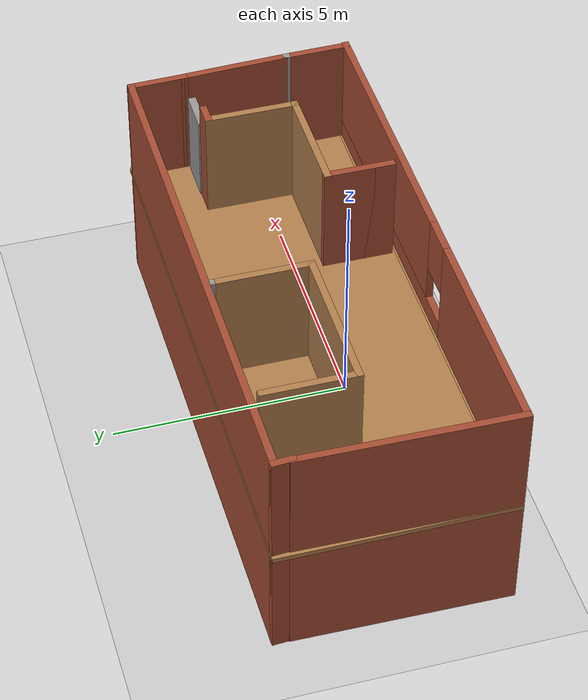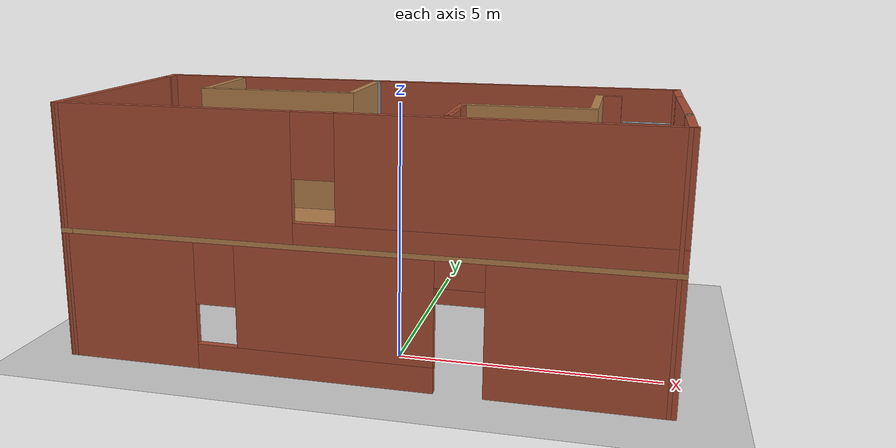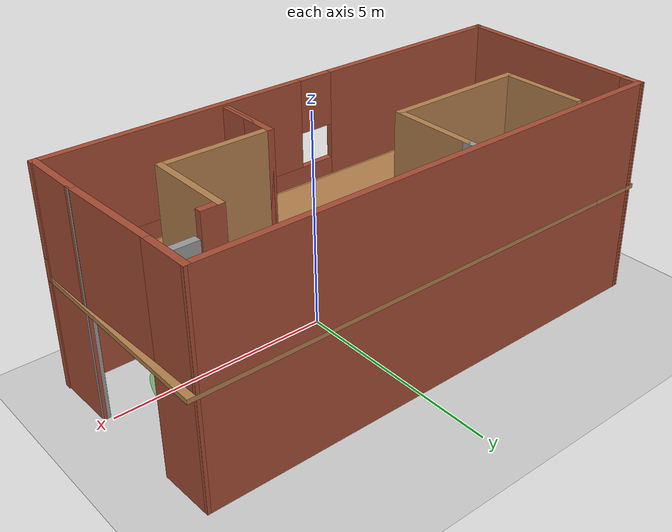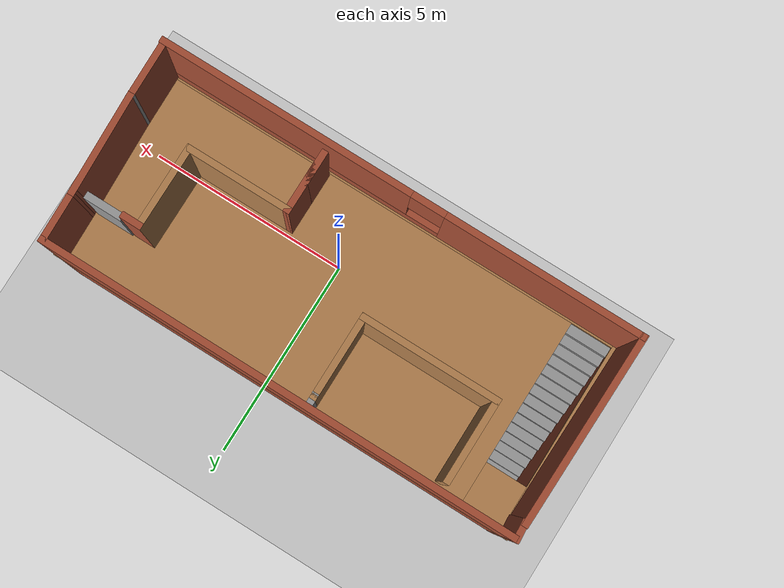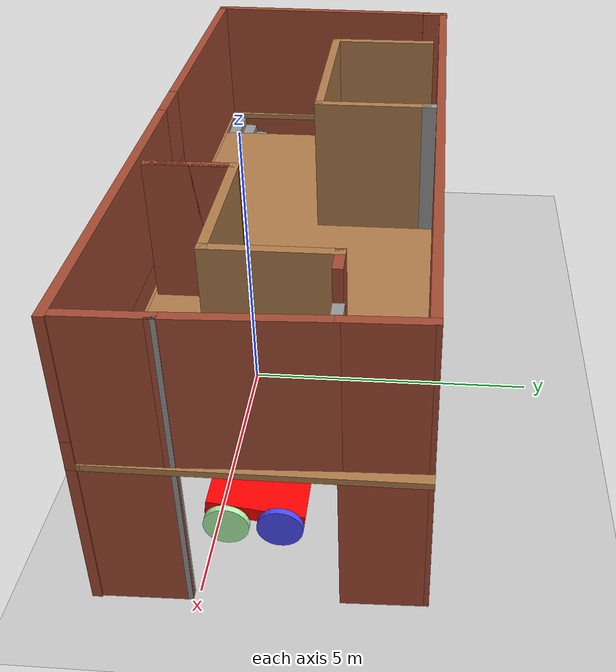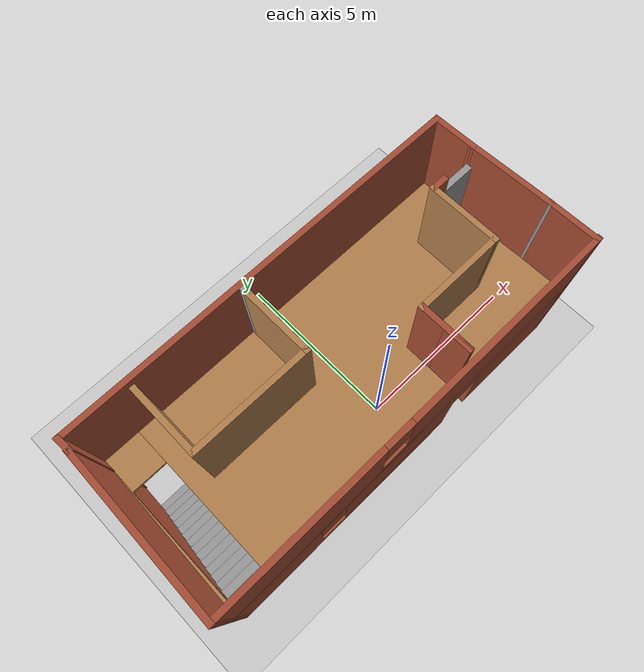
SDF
<sdf version="1.6">
 <world name="default">
  <model name="ground_plane">
   <static>1</static>
   <link name="link">
    <collision name="collision">
     <geometry><plane><normal>0 0 1</normal><size>100 100</size></plane></geometry>
     <surface><friction><ode><mu>100</mu><mu2>50</mu2></ode></friction></surface>
    </collision>
    <visual name="visual">
     <cast_shadows>0</cast_shadows>
     <geometry><plane><normal>0 0 1</normal><size>100 100</size></plane></geometry>
     <material>
      <script><uri>file://media/materials/scripts/gazebo.material</uri><name>Gazebo/Grey</name></script>
     </material>
    </visual>
   </link>
  </model>
  <model name="My_garage2">
   <pose>-0.5451 0.88791 0 0 -0 0</pose>
   <link name="Door_0">
    <collision name="Door_0_Collision">
     <geometry><box><size>0.9 0.17 2</size></box></geometry>
     <pose>0 0 1 0 -0 0</pose>
    </collision>
    <visual name="Door_0_Visual">
     <pose>0 0 1 0 -0 0</pose>
     <geometry><box><size>0.9 0.17 2</size></box></geometry>
     <material>
      <script><uri>file://media/materials/scripts/gazebo.material</uri><name>Gazebo/Grey</name></script>
     </material>
    </visual>
    <pose>4.94982 1.09681 2.5 0 -0 0</pose>
   </link>
   <link name="Floor_0">
    <pose>0 -0 2.5 0 -0 0</pose>
    <visual name="Floor_0_Visual_0">
     <pose>-5.62992 0 0.05 0 -0 0</pose>
     <geometry><box><size>0.241489 4.87682 0.1</size></box></geometry>
     <material>
      <script><uri>file://media/materials/scripts/gazebo.material</uri><name>Gazebo/Wood</name></script>
      <ambient>1 1 1 1</ambient>
     </material>
     <meta><layer>1</layer></meta>
    </visual>
    <collision name="Floor_0_Collision_0">
     <geometry><box><size>0.241489 4.87682 0.1</size></box></geometry>
     <pose>-5.62992 0 0.05 0 -0 0</pose>
    </collision>
    <visual name="Floor_0_Visual_1">
     <pose>0.120744 -2.3393 0.05 0 -0 0</pose>
     <geometry><box><size>11.2598 0.198217 0.1</size></box></geometry>
     <material>
      <script><uri>file://media/materials/scripts/gazebo.material</uri><name>Gazebo/Wood</name></script>
      <ambient>1 1 1 1</ambient>
     </material>
     <meta><layer>1</layer></meta>
    </visual>
    <collision name="Floor_0_Collision_1">
     <geometry><box><size>11.2598 0.198217 0.1</size></box></geometry>
     <pose>0.120744 -2.3393 0.05 0 -0 0</pose>
    </collision>
    <visual name="Floor_0_Visual_2">
     <pose>0.620744 0.099108 0.05 0 -0 0</pose>
     <geometry><box><size>10.2598 4.67861 0.1</size></box></geometry>
     <material>
      <script><uri>file://media/materials/scripts/gazebo.material</uri><name>Gazebo/Wood</name></script>
      <ambient>1 1 1 1</ambient>
     </material>
     <meta><layer>1</layer></meta>
    </visual>
    <collision name="Floor_0_Collision_2">
     <geometry><box><size>10.2598 4.67861 0.1</size></box></geometry>
     <pose>0.620744 0.099108 0.05 0 -0 0</pose>
    </collision>
    <visual name="Floor_0_Visual_3">
     <pose>-5.00917 1.84911 0.05 0 -0 0</pose>
     <geometry><box><size>1 1.1786 0.1</size></box></geometry>
     <material>
      <script><uri>file://media/materials/scripts/gazebo.material</uri><name>Gazebo/Wood</name></script>
      <ambient>1 1 1 1</ambient>
     </material>
     <meta><layer>1</layer></meta>
    </visual>
    <collision name="Floor_0_Collision_3">
     <geometry><box><size>1 1.1786 0.1</size></box></geometry>
     <pose>-5.00917 1.84911 0.05 0 -0 0</pose>
    </collision>
   </link>
   <link name="Stairs_0">
    <visual name="Stairs_0_Visual_0">
     <pose>-5.00917 1.14314 0.083333 0 -0 0</pose>
     <geometry><box><size>1 0.233333 0.166667</size></box></geometry>
     <material>
      <script><uri>file://media/materials/scripts/gazebo.material</uri><name>Gazebo/Grey</name></script>
      <ambient>1 1 1 1</ambient>
     </material>
     <meta><layer>0</layer></meta>
    </visual>
    <collision name="Stairs_0_Collision_0">
     <geometry><box><size>1 0.233333 0.166667</size></box></geometry>
     <pose>-5.00917 1.14314 0.083333 0 -0 0</pose>
    </collision>
    <visual name="Stairs_0_Visual_1">
     <pose>-5.00917 0.909806 0.25 0 -0 0</pose>
     <geometry><box><size>1 0.233333 0.166667</size></box></geometry>
     <material>
      <script><uri>file://media/materials/scripts/gazebo.material</uri><name>Gazebo/Grey</name></script>
      <ambient>1 1 1 1</ambient>
     </material>
     <meta><layer>0</layer></meta>
    </visual>
    <collision name="Stairs_0_Collision_1">
     <geometry><box><size>1 0.233333 0.166667</size></box></geometry>
     <pose>-5.00917 0.909806 0.25 0 -0 0</pose>
    </collision>
    <visual name="Stairs_0_Visual_2">
     <pose>-5.00917 0.676473 0.416667 0 -0 0</pose>
     <geometry><box><size>1 0.233333 0.166667</size></box></geometry>
     <material>
      <script><uri>file://media/materials/scripts/gazebo.material</uri><name>Gazebo/Grey</name></script>
      <ambient>1 1 1 1</ambient>
     </material>
     <meta><layer>0</layer></meta>
    </visual>
    <collision name="Stairs_0_Collision_2">
     <geometry><box><size>1 0.233333 0.166667</size></box></geometry>
     <pose>-5.00917 0.676473 0.416667 0 -0 0</pose>
    </collision>
    <visual name="Stairs_0_Visual_3">
     <pose>-5.00917 0.443139 0.583333 0 -0 0</pose>
     <geometry><box><size>1 0.233333 0.166667</size></box></geometry>
     <material>
      <script><uri>file://media/materials/scripts/gazebo.material</uri><name>Gazebo/Grey</name></script>
      <ambient>1 1 1 1</ambient>
     </material>
     <meta><layer>0</layer></meta>
    </visual>
    <collision name="Stairs_0_Collision_3">
     <geometry><box><size>1 0.233333 0.166667</size></box></geometry>
     <pose>-5.00917 0.443139 0.583333 0 -0 0</pose>
    </collision>
    <visual name="Stairs_0_Visual_4">
     <pose>-5.00917 0.209806 0.75 0 -0 0</pose>
     <geometry><box><size>1 0.233333 0.166667</size></box></geometry>
     <material>
      <script><uri>file://media/materials/scripts/gazebo.material</uri><name>Gazebo/Grey</name></script>
      <ambient>1 1 1 1</ambient>
     </material>
     <meta><layer>0</layer></meta>
    </visual>
    <collision name="Stairs_0_Collision_4">
     <geometry><box><size>1 0.233333 0.166667</size></box></geometry>
     <pose>-5.00917 0.209806 0.75 0 -0 0</pose>
    </collision>
    <visual name="Stairs_0_Visual_5">
     <pose>-5.00917 -0.023527 0.916667 0 -0 0</pose>
     <geometry><box><size>1 0.233333 0.166667</size></box></geometry>
     <material>
      <script><uri>file://media/materials/scripts/gazebo.material</uri><name>Gazebo/Grey</name></script>
      <ambient>1 1 1 1</ambient>
     </material>
     <meta><layer>0</layer></meta>
    </visual>
    <collision name="Stairs_0_Collision_5">
     <geometry><box><size>1 0.233333 0.166667</size></box></geometry>
     <pose>-5.00917 -0.023527 0.916667 0 -0 0</pose>
    </collision>
    <visual name="Stairs_0_Visual_6">
     <pose>-5.00917 -0.256861 1.08333 0 -0 0</pose>
     <geometry><box><size>1 0.233333 0.166667</size></box></geometry>
     <material>
      <script><uri>file://media/materials/scripts/gazebo.material</uri><name>Gazebo/Grey</name></script>
      <ambient>1 1 1 1</ambient>
     </material>
     <meta><layer>0</layer></meta>
    </visual>
    <collision name="Stairs_0_Collision_6">
     <geometry><box><size>1 0.233333 0.166667</size></box></geometry>
     <pose>-5.00917 -0.256861 1.08333 0 -0 0</pose>
    </collision>
    <visual name="Stairs_0_Visual_7">
     <pose>-5.00917 -0.490194 1.25 0 -0 0</pose>
     <geometry><box><size>1 0.233333 0.166667</size></box></geometry>
     <material>
      <script><uri>file://media/materials/scripts/gazebo.material</uri><name>Gazebo/Grey</name></script>
      <ambient>1 1 1 1</ambient>
     </material>
     <meta><layer>0</layer></meta>
    </visual>
    <collision name="Stairs_0_Collision_7">
     <geometry><box><size>1 0.233333 0.166667</size></box></geometry>
     <pose>-5.00917 -0.490194 1.25 0 -0 0</pose>
    </collision>
    <visual name="Stairs_0_Visual_8">
     <pose>-5.00917 -0.723527 1.41667 0 -0 0</pose>
     <geometry><box><size>1 0.233333 0.166667</size></box></geometry>
     <material>
      <script><uri>file://media/materials/scripts/gazebo.material</uri><name>Gazebo/Grey</name></script>
      <ambient>1 1 1 1</ambient>
     </material>
     <meta><layer>0</layer></meta>
    </visual>
    <collision name="Stairs_0_Collision_8">
     <geometry><box><size>1 0.233333 0.166667</size></box></geometry>
     <pose>-5.00917 -0.723527 1.41667 0 -0 0</pose>
    </collision>
    <visual name="Stairs_0_Visual_9">
     <pose>-5.00917 -0.956861 1.58333 0 -0 0</pose>
     <geometry><box><size>1 0.233333 0.166667</size></box></geometry>
     <material>
      <script><uri>file://media/materials/scripts/gazebo.material</uri><name>Gazebo/Grey</name></script>
      <ambient>1 1 1 1</ambient>
     </material>
     <meta><layer>0</layer></meta>
    </visual>
    <collision name="Stairs_0_Collision_9">
     <geometry><box><size>1 0.233333 0.166667</size></box></geometry>
     <pose>-5.00917 -0.956861 1.58333 0 -0 0</pose>
    </collision>
    <visual name="Stairs_0_Visual_10">
     <pose>-5.00917 -1.19019 1.75 0 -0 0</pose>
     <geometry><box><size>1 0.233333 0.166667</size></box></geometry>
     <material>
      <script><uri>file://media/materials/scripts/gazebo.material</uri><name>Gazebo/Grey</name></script>
      <ambient>1 1 1 1</ambient>
     </material>
     <meta><layer>0</layer></meta>
    </visual>
    <collision name="Stairs_0_Collision_10">
     <geometry><box><size>1 0.233333 0.166667</size></box></geometry>
     <pose>-5.00917 -1.19019 1.75 0 -0 0</pose>
    </collision>
    <visual name="Stairs_0_Visual_11">
     <pose>-5.00917 -1.42353 1.91667 0 -0 0</pose>
     <geometry><box><size>1 0.233333 0.166667</size></box></geometry>
     <material>
      <script><uri>file://media/materials/scripts/gazebo.material</uri><name>Gazebo/Grey</name></script>
      <ambient>1 1 1 1</ambient>
     </material>
     <meta><layer>0</layer></meta>
    </visual>
    <collision name="Stairs_0_Collision_11">
     <geometry><box><size>1 0.233333 0.166667</size></box></geometry>
     <pose>-5.00917 -1.42353 1.91667 0 -0 0</pose>
    </collision>
    <visual name="Stairs_0_Visual_12">
     <pose>-5.00917 -1.65686 2.08333 0 -0 0</pose>
     <geometry><box><size>1 0.233333 0.166667</size></box></geometry>
     <material>
      <script><uri>file://media/materials/scripts/gazebo.material</uri><name>Gazebo/Grey</name></script>
      <ambient>1 1 1 1</ambient>
     </material>
     <meta><layer>0</layer></meta>
    </visual>
    <collision name="Stairs_0_Collision_12">
     <geometry><box><size>1 0.233333 0.166667</size></box></geometry>
     <pose>-5.00917 -1.65686 2.08333 0 -0 0</pose>
    </collision>
    <visual name="Stairs_0_Visual_13">
     <pose>-5.00917 -1.89019 2.25 0 -0 0</pose>
     <geometry><box><size>1 0.233333 0.166667</size></box></geometry>
     <material>
      <script><uri>file://media/materials/scripts/gazebo.material</uri><name>Gazebo/Grey</name></script>
      <ambient>1 1 1 1</ambient>
     </material>
     <meta><layer>0</layer></meta>
    </visual>
    <collision name="Stairs_0_Collision_13">
     <geometry><box><size>1 0.233333 0.166667</size></box></geometry>
     <pose>-5.00917 -1.89019 2.25 0 -0 0</pose>
    </collision>
    <visual name="Stairs_0_Visual_14">
     <pose>-5.00917 -2.12353 2.41667 0 -0 0</pose>
     <geometry><box><size>1 0.233333 0.166667</size></box></geometry>
     <material>
      <script><uri>file://media/materials/scripts/gazebo.material</uri><name>Gazebo/Grey</name></script>
      <ambient>1 1 1 1</ambient>
     </material>
     <meta><layer>0</layer></meta>
    </visual>
    <collision name="Stairs_0_Collision_14">
     <geometry><box><size>1 0.233333 0.166667</size></box></geometry>
     <pose>-5.00917 -2.12353 2.41667 0 -0 0</pose>
    </collision>
   </link>
   <link name="Wall_0">
    <collision name="Wall_0_Collision">
     <geometry><box><size>4.52115 0.15 2.5</size></box></geometry>
     <pose>0 0 1.25 0 -0 0</pose>
    </collision>
    <visual name="Wall_0_Visual">
     <pose>0 0 1.25 0 -0 0</pose>
     <geometry><box><size>4.52115 0.15 2.5</size></box></geometry>
     <material>
      <script><uri>file://media/materials/scripts/gazebo.material</uri><name>Gazebo/Bricks</name></script>
      <ambient>1 1 1 1</ambient>
     </material>
     <meta><layer>0</layer></meta>
    </visual>
    <pose>-5.63531 -0.176715 0 0 -0 -1.58865</pose>
   </link>
   <link name="Wall_1">
    <pose>0.012164 -2.36208 0 0 -0 0</pose>
    <visual name="Wall_1_Visual_0">
     <pose>-4.38392 0 1.25 0 -0 0</pose>
     <geometry><box><size>2.70916 0.15 2.5</size></box></geometry>
     <material>
      <script><uri>file://media/materials/scripts/gazebo.material</uri><name>Gazebo/Bricks</name></script>
      <ambient>1 1 1 1</ambient>
     </material>
     <meta><layer>0</layer></meta>
    </visual>
    <collision name="Wall_1_Collision_0">
     <geometry><box><size>2.70916 0.15 2.5</size></box></geometry>
     <pose>-4.38392 0 1.25 0 -0 0</pose>
    </collision>
    <visual name="Wall_1_Visual_1">
     <pose>4.07958 0 1.25 0 -0 0</pose>
     <geometry><box><size>3.31784 0.15 2.5</size></box></geometry>
     <material>
      <script><uri>file://media/materials/scripts/gazebo.material</uri><name>Gazebo/Bricks</name></script>
      <ambient>1 1 1 1</ambient>
     </material>
     <meta><layer>0</layer></meta>
    </visual>
    <collision name="Wall_1_Collision_1">
     <geometry><box><size>3.31784 0.15 2.5</size></box></geometry>
     <pose>4.07958 0 1.25 0 -0 0</pose>
    </collision>
    <visual name="Wall_1_Visual_2">
     <pose>-0.754338 0 0.25 0 -0 0</pose>
     <geometry><box><size>4.55 0.15 0.5</size></box></geometry>
     <material>
      <script><uri>file://media/materials/scripts/gazebo.material</uri><name>Gazebo/Bricks</name></script>
      <ambient>1 1 1 1</ambient>
     </material>
     <meta><layer>0</layer></meta>
    </visual>
    <collision name="Wall_1_Collision_2">
     <geometry><box><size>4.55 0.15 0.5</size></box></geometry>
     <pose>-0.754338 0 0.25 0 -0 0</pose>
    </collision>
    <visual name="Wall_1_Visual_3">
     <pose>-0.354338 0 1.5 0 -0 0</pose>
     <geometry><box><size>3.75 0.15 2</size></box></geometry>
     <material>
      <script><uri>file://media/materials/scripts/gazebo.material</uri><name>Gazebo/Bricks</name></script>
      <ambient>1 1 1 1</ambient>
     </material>
     <meta><layer>0</layer></meta>
    </visual>
    <collision name="Wall_1_Collision_3">
     <geometry><box><size>3.75 0.15 2</size></box></geometry>
     <pose>-0.354338 0 1.5 0 -0 0</pose>
    </collision>
    <visual name="Wall_1_Visual_4">
     <pose>-2.62934 0 1.9 0 -0 0</pose>
     <geometry><box><size>0.8 0.15 1.2</size></box></geometry>
     <material>
      <script><uri>file://media/materials/scripts/gazebo.material</uri><name>Gazebo/Bricks</name></script>
      <ambient>1 1 1 1</ambient>
     </material>
     <meta><layer>0</layer></meta>
    </visual>
    <collision name="Wall_1_Collision_4">
     <geometry><box><size>0.8 0.15 1.2</size></box></geometry>
     <pose>-2.62934 0 1.9 0 -0 0</pose>
    </collision>
    <visual name="Wall_1_Visual_5">
     <pose>1.97066 0 2.25 0 -0 0</pose>
     <geometry><box><size>0.9 0.15 0.5</size></box></geometry>
     <material>
      <script><uri>file://media/materials/scripts/gazebo.material</uri><name>Gazebo/Bricks</name></script>
      <ambient>1 1 1 1</ambient>
     </material>
     <meta><layer>0</layer></meta>
    </visual>
    <collision name="Wall_1_Collision_5">
     <geometry><box><size>0.9 0.15 0.5</size></box></geometry>
     <pose>1.97066 0 2.25 0 -0 0</pose>
    </collision>
   </link>
   <link name="Wall_11">
    <collision name="Wall_11_Collision">
     <geometry><box><size>4.52143 0.15 2.5</size></box></geometry>
     <pose>0 0 1.25 0 -0 0</pose>
    </collision>
    <visual name="Wall_11_Visual">
     <pose>0 0 1.25 0 -0 0</pose>
     <geometry><box><size>4.52143 0.15 2.5</size></box></geometry>
     <material>
      <script><uri>file://media/materials/scripts/gazebo.material</uri><name>Gazebo/Bricks</name></script>
      <ambient>1 1 1 1</ambient>
     </material>
     <meta><layer>1</layer></meta>
    </visual>
    <pose>-5.63531 -0.176715 2.5 0 -0 -1.58865</pose>
   </link>
   <link name="Wall_12">
    <pose>0.012164 -2.36208 2.5 0 -0 0</pose>
    <visual name="Wall_12_Visual_0">
     <pose>-3.40642 0 1.25 0 -0 0</pose>
     <geometry><box><size>4.66416 0.15 2.5</size></box></geometry>
     <material>
      <script><uri>file://media/materials/scripts/gazebo.material</uri><name>Gazebo/Bricks</name></script>
      <ambient>1 1 1 1</ambient>
     </material>
     <meta><layer>1</layer></meta>
    </visual>
    <collision name="Wall_12_Collision_0">
     <geometry><box><size>4.66416 0.15 2.5</size></box></geometry>
     <pose>-3.40642 0 1.25 0 -0 0</pose>
    </collision>
    <visual name="Wall_12_Visual_1">
     <pose>2.33208 0 0.25 0 -0 0</pose>
     <geometry><box><size>6.81284 0.15 0.5</size></box></geometry>
     <material>
      <script><uri>file://media/materials/scripts/gazebo.material</uri><name>Gazebo/Bricks</name></script>
      <ambient>1 1 1 1</ambient>
     </material>
     <meta><layer>1</layer></meta>
    </visual>
    <collision name="Wall_12_Collision_1">
     <geometry><box><size>6.81284 0.15 0.5</size></box></geometry>
     <pose>2.33208 0 0.25 0 -0 0</pose>
    </collision>
    <visual name="Wall_12_Visual_2">
     <pose>2.73208 0 1.5 0 -0 0</pose>
     <geometry><box><size>6.01284 0.15 2</size></box></geometry>
     <material>
      <script><uri>file://media/materials/scripts/gazebo.material</uri><name>Gazebo/Bricks</name></script>
      <ambient>1 1 1 1</ambient>
     </material>
     <meta><layer>1</layer></meta>
    </visual>
    <collision name="Wall_12_Collision_2">
     <geometry><box><size>6.01284 0.15 2</size></box></geometry>
     <pose>2.73208 0 1.5 0 -0 0</pose>
    </collision>
    <visual name="Wall_12_Visual_3">
     <pose>-0.674338 0 1.9 0 -0 0</pose>
     <geometry><box><size>0.8 0.15 1.2</size></box></geometry>
     <material>
      <script><uri>file://media/materials/scripts/gazebo.material</uri><name>Gazebo/Bricks</name></script>
      <ambient>1 1 1 1</ambient>
     </material>
     <meta><layer>1</layer></meta>
    </visual>
    <collision name="Wall_12_Collision_3">
     <geometry><box><size>0.8 0.15 1.2</size></box></geometry>
     <pose>-0.674338 0 1.9 0 -0 0</pose>
    </collision>
   </link>
   <link name="Wall_13">
    <collision name="Wall_13_Collision">
     <geometry><box><size>1.4772 0.15 2.5</size></box></geometry>
     <pose>0 0 1.25 0 -0 0</pose>
    </collision>
    <visual name="Wall_13_Visual">
     <pose>0 0 1.25 0 -0 0</pose>
     <geometry><box><size>1.4772 0.15 2.5</size></box></geometry>
     <material>
      <script><uri>file://media/materials/scripts/gazebo.material</uri><name>Gazebo/Bricks</name></script>
      <ambient>1 1 1 1</ambient>
     </material>
     <meta><layer>1</layer></meta>
    </visual>
    <pose>5.64116 -1.69858 2.5 0 -0 1.58813</pose>
   </link>
   <link name="Wall_14">
    <collision name="Wall_14_Collision">
     <geometry><box><size>0.15 0.15 2.5</size></box></geometry>
     <pose>0 0 1.25 0 -0 0</pose>
    </collision>
    <visual name="Wall_14_Visual">
     <pose>0 0 1.25 0 -0 0</pose>
     <geometry><box><size>0.15 0.15 2.5</size></box></geometry>
     <material>
      <script><uri>file://media/materials/scripts/gazebo.material</uri><name>Gazebo/Grey</name></script>
      <ambient>1 1 1 1</ambient>
     </material>
     <meta><layer>1</layer></meta>
    </visual>
    <pose>5.62966 -1.03508 2.5 0 -0 0</pose>
   </link>
   <link name="Wall_15">
    <collision name="Wall_15_Collision">
     <geometry><box><size>1.28083 0.15 2.5</size></box></geometry>
     <pose>0 0 1.25 0 -0 0</pose>
    </collision>
    <visual name="Wall_15_Visual">
     <pose>0 0 1.25 0 -0 0</pose>
     <geometry><box><size>1.28083 0.15 2.5</size></box></geometry>
     <material>
      <script><uri>file://media/materials/scripts/gazebo.material</uri><name>Gazebo/Bricks</name></script>
      <ambient>1 1 1 1</ambient>
     </material>
     <meta><layer>1</layer></meta>
    </visual>
    <pose>5.51893 1.79344 2.5 0 -0 1.5977</pose>
   </link>
   <link name="Wall_16">
    <collision name="Wall_16_Collision">
     <geometry><box><size>11.1892 0.15 2.5</size></box></geometry>
     <pose>0 0 1.25 0 -0 0</pose>
    </collision>
    <visual name="Wall_16_Visual">
     <pose>0 0 1.25 0 -0 0</pose>
     <geometry><box><size>11.1892 0.15 2.5</size></box></geometry>
     <material>
      <script><uri>file://media/materials/scripts/gazebo.material</uri><name>Gazebo/Bricks</name></script>
      <ambient>1 1 1 1</ambient>
     </material>
     <meta><layer>1</layer></meta>
    </visual>
    <pose>-0.015861 2.35865 2.5 0 -0 3.14159</pose>
   </link>
   <link name="Wall_17">
    <collision name="Wall_17_Collision">
     <geometry><box><size>0.500755 0.15 2.5</size></box></geometry>
     <pose>0 0 1.25 0 -0 0</pose>
    </collision>
    <visual name="Wall_17_Visual">
     <pose>0 0 1.25 0 -0 0</pose>
     <geometry><box><size>0.500755 0.15 2.5</size></box></geometry>
     <material>
      <script><uri>file://media/materials/scripts/gazebo.material</uri><name>Gazebo/Bricks</name></script>
      <ambient>1 1 1 1</ambient>
     </material>
     <meta><layer>1</layer></meta>
    </visual>
    <pose>-5.58478 2.18365 2.5 0 -0 -1.50518</pose>
   </link>
   <link name="Wall_18">
    <collision name="Wall_18_Collision">
     <geometry><box><size>2 0.15 2.5</size></box></geometry>
     <pose>0 0 1.25 0 -0 0</pose>
    </collision>
    <visual name="Wall_18_Visual">
     <pose>0 0 1.25 0 -0 0</pose>
     <geometry><box><size>2 0.15 2.5</size></box></geometry>
     <material>
      <script><uri>file://media/materials/scripts/gazebo.material</uri><name>Gazebo/Wood</name></script>
      <ambient>1 1 1 1</ambient>
     </material>
     <meta><layer>1</layer></meta>
    </visual>
    <pose>-3.85918 1.18381 2.5 0 -0 -1.5708</pose>
   </link>
   <link name="Wall_19">
    <collision name="Wall_19_Collision">
     <geometry><box><size>3.25 0.15 2.5</size></box></geometry>
     <pose>0 0 1.25 0 -0 0</pose>
    </collision>
    <visual name="Wall_19_Visual">
     <pose>0 0 1.25 0 -0 0</pose>
     <geometry><box><size>3.25 0.15 2.5</size></box></geometry>
     <material>
      <script><uri>file://media/materials/scripts/gazebo.material</uri><name>Gazebo/Wood</name></script>
      <ambient>1 1 1 1</ambient>
     </material>
     <meta><layer>1</layer></meta>
    </visual>
    <pose>-2.30918 0.258806 2.5 0 -0 0</pose>
   </link>
   <link name="Wall_2">
    <collision name="Wall_2_Collision">
     <geometry><box><size>1.4772 0.15 2.5</size></box></geometry>
     <pose>0 0 1.25 0 -0 0</pose>
    </collision>
    <visual name="Wall_2_Visual">
     <pose>0 0 1.25 0 -0 0</pose>
     <geometry><box><size>1.4772 0.15 2.5</size></box></geometry>
     <material>
      <script><uri>file://media/materials/scripts/gazebo.material</uri><name>Gazebo/Bricks</name></script>
      <ambient>1 1 1 1</ambient>
     </material>
     <meta><layer>0</layer></meta>
    </visual>
    <pose>5.64116 -1.69858 0 0 -0 1.58813</pose>
   </link>
   <link name="Wall_20">
    <collision name="Wall_20_Collision">
     <geometry><box><size>2 0.15 2.5</size></box></geometry>
     <pose>0 0 1.25 0 -0 0</pose>
    </collision>
    <visual name="Wall_20_Visual">
     <pose>0 0 1.25 0 -0 0</pose>
     <geometry><box><size>2 0.15 2.5</size></box></geometry>
     <material>
      <script><uri>file://media/materials/scripts/gazebo.material</uri><name>Gazebo/Wood</name></script>
      <ambient>1 1 1 1</ambient>
     </material>
     <meta><layer>1</layer></meta>
    </visual>
    <pose>-0.759174 1.18381 2.5 0 -0 1.5708</pose>
   </link>
   <link name="Wall_21">
    <collision name="Wall_21_Collision">
     <geometry><box><size>0.25 0.15 2.5</size></box></geometry>
     <pose>0 0 1.25 0 -0 0</pose>
    </collision>
    <visual name="Wall_21_Visual">
     <pose>0 0 1.25 0 -0 0</pose>
     <geometry><box><size>0.25 0.15 2.5</size></box></geometry>
     <material>
      <script><uri>file://media/materials/scripts/gazebo.material</uri><name>Gazebo/Grey</name></script>
      <ambient>1 1 1 1</ambient>
     </material>
     <meta><layer>1</layer></meta>
    </visual>
    <pose>-0.759174 2.15881 2.5 0 -0 1.5708</pose>
   </link>
   <link name="Wall_23">
    <collision name="Wall_23_Collision">
     <geometry><box><size>1.5 0.15 2.5</size></box></geometry>
     <pose>0 0 1.25 0 -0 0</pose>
    </collision>
    <visual name="Wall_23_Visual">
     <pose>0 0 1.25 0 -0 0</pose>
     <geometry><box><size>1.5 0.15 2.5</size></box></geometry>
     <material>
      <script><uri>file://media/materials/scripts/gazebo.material</uri><name>Gazebo/Bricks</name></script>
      <ambient>1 1 1 1</ambient>
     </material>
     <meta><layer>1</layer></meta>
    </visual>
    <pose>1.68382 -1.44119 2.5 0 -0 -1.5708</pose>
   </link>
   <link name="Wall_24">
    <collision name="Wall_24_Collision">
     <geometry><box><size>1.5 0.15 2.5</size></box></geometry>
     <pose>0 0 1.25 0 -0 0</pose>
    </collision>
    <visual name="Wall_24_Visual">
     <pose>0 0 1.25 0 -0 0</pose>
     <geometry><box><size>1.5 0.15 2.5</size></box></geometry>
     <material>
      <script><uri>file://media/materials/scripts/gazebo.material</uri><name>Gazebo/Bricks</name></script>
      <ambient>1 1 1 1</ambient>
     </material>
     <meta><layer>1</layer></meta>
    </visual>
    <pose>1.68382 -1.44119 2.5 0 -0 1.5708</pose>
   </link>
   <link name="Wall_25">
    <collision name="Wall_25_Collision">
     <geometry><box><size>2.5 0.15 2.5</size></box></geometry>
     <pose>0 0 1.25 0 -0 0</pose>
    </collision>
    <visual name="Wall_25_Visual">
     <pose>0 0 1.25 0 -0 0</pose>
     <geometry><box><size>2.5 0.15 2.5</size></box></geometry>
     <material>
      <script><uri>file://media/materials/scripts/gazebo.material</uri><name>Gazebo/Wood</name></script>
      <ambient>1 1 1 1</ambient>
     </material>
     <meta><layer>1</layer></meta>
    </visual>
    <pose>2.85883 -0.766194 2.5 0 -0 0</pose>
   </link>
   <link name="Wall_26">
    <collision name="Wall_26_Collision">
     <geometry><box><size>2 0.15 2.5</size></box></geometry>
     <pose>0 0 1.25 0 -0 0</pose>
    </collision>
    <visual name="Wall_26_Visual">
     <pose>0 0 1.25 0 -0 0</pose>
     <geometry><box><size>2 0.15 2.5</size></box></geometry>
     <material>
      <script><uri>file://media/materials/scripts/gazebo.material</uri><name>Gazebo/Wood</name></script>
      <ambient>1 1 1 1</ambient>
     </material>
     <meta><layer>1</layer></meta>
    </visual>
    <pose>4.03383 0.158806 2.5 0 -0 1.5708</pose>
   </link>
   <link name="Wall_27">
    <collision name="Wall_27_Collision">
     <geometry><box><size>0.5 0.15 2.5</size></box></geometry>
     <pose>0 0 1.25 0 -0 0</pose>
    </collision>
    <visual name="Wall_27_Visual">
     <pose>0 0 1.25 0 -0 0</pose>
     <geometry><box><size>0.5 0.15 2.5</size></box></geometry>
     <material>
      <script><uri>file://media/materials/scripts/gazebo.material</uri><name>Gazebo/Bricks</name></script>
      <ambient>1 1 1 1</ambient>
     </material>
     <meta><layer>1</layer></meta>
    </visual>
    <pose>4.20883 1.08381 2.5 0 -0 0</pose>
   </link>
   <link name="Wall_29">
    <collision name="Wall_29_Collision">
     <geometry><box><size>2.41533 0.15 2.5</size></box></geometry>
     <pose>0 0 1.25 0 -0 0</pose>
    </collision>
    <visual name="Wall_29_Visual">
     <pose>0 0 1.25 0 -0 0</pose>
     <geometry><box><size>2.41533 0.15 2.5</size></box></geometry>
     <material>
      <script><uri>file://media/materials/scripts/gazebo.material</uri><name>Gazebo/Bricks</name></script>
      <ambient>1 1 1 1</ambient>
     </material>
     <meta><layer>1</layer></meta>
    </visual>
    <pose>5.5819 0.096577 2.5 0 -0 -1.52862</pose>
   </link>
   <link name="Wall_3">
    <collision name="Wall_3_Collision">
     <geometry><box><size>0.15 0.15 2.5</size></box></geometry>
     <pose>0 0 1.25 0 -0 0</pose>
    </collision>
    <visual name="Wall_3_Visual">
     <pose>0 0 1.25 0 -0 0</pose>
     <geometry><box><size>0.15 0.15 2.5</size></box></geometry>
     <material>
      <script><uri>file://media/materials/scripts/gazebo.material</uri><name>Gazebo/Grey</name></script>
      <ambient>1 1 1 1</ambient>
     </material>
     <meta><layer>0</layer></meta>
    </visual>
    <pose>5.62966 -1.03508 0 0 -0 0</pose>
   </link>
   <link name="Wall_5">
    <collision name="Wall_5_Collision">
     <geometry><box><size>1.28083 0.15 2.5</size></box></geometry>
     <pose>0 0 1.25 0 -0 0</pose>
    </collision>
    <visual name="Wall_5_Visual">
     <pose>0 0 1.25 0 -0 0</pose>
     <geometry><box><size>1.28083 0.15 2.5</size></box></geometry>
     <material>
      <script><uri>file://media/materials/scripts/gazebo.material</uri><name>Gazebo/Bricks</name></script>
      <ambient>1 1 1 1</ambient>
     </material>
     <meta><layer>0</layer></meta>
    </visual>
    <pose>5.51893 1.79344 0 0 -0 1.5977</pose>
   </link>
   <link name="Wall_8">
    <collision name="Wall_8_Collision">
     <geometry><box><size>11.1892 0.15 2.5</size></box></geometry>
     <pose>0 0 1.25 0 -0 0</pose>
    </collision>
    <visual name="Wall_8_Visual">
     <pose>0 0 1.25 0 -0 0</pose>
     <geometry><box><size>11.1892 0.15 2.5</size></box></geometry>
     <material>
      <script><uri>file://media/materials/scripts/gazebo.material</uri><name>Gazebo/Bricks</name></script>
      <ambient>1 1 1 1</ambient>
     </material>
     <meta><layer>0</layer></meta>
    </visual>
    <pose>-0.015861 2.35865 0 0 -0 3.14159</pose>
   </link>
   <link name="Wall_9">
    <collision name="Wall_9_Collision">
     <geometry><box><size>0.500755 0.15 2.5</size></box></geometry>
     <pose>0 0 1.25 0 -0 0</pose>
    </collision>
    <visual name="Wall_9_Visual">
     <pose>0 0 1.25 0 -0 0</pose>
     <geometry><box><size>0.500755 0.15 2.5</size></box></geometry>
     <material>
      <script><uri>file://media/materials/scripts/gazebo.material</uri><name>Gazebo/Bricks</name></script>
      <ambient>1 1 1 1</ambient>
     </material>
     <meta><layer>0</layer></meta>
    </visual>
    <pose>-5.58478 2.18365 0 0 -0 -1.50518</pose>
   </link>
   <static>1</static>
  </model>
  <model name="my_car2_clone_1">
   <link name="link_0">
    <inertial>
     <mass>0.276053</mass>
     <inertia>
      <ixx>0.0553179</ixx>
      <ixy>0</ixy>
      <ixz>0</ixz>
      <iyy>0.0149267</iyy>
      <iyz>0</iyz>
      <izz>0.0677343</izz>
     </inertia>
    </inertial>
    <pose>0.341303 -0.303641 0.194258 0 -0 0</pose>
    <visual name="visual">
     <geometry><box><size>0.770868 1.533 0.233602</size></box></geometry>
     <material>
      <lighting>1</lighting>
      <script><uri>file://media/materials/scripts/gazebo.material</uri><name>Gazebo/Grey</name></script>
      <emissive>1 0 0 1</emissive>
      <diffuse>1 0 0 0</diffuse>
      <shader type="vertex"><normal_map>__default__</normal_map></shader>
      <ambient>0.3 0.3 0.3 1</ambient>
      <specular>1 0.01 0.01 1</specular>
     </material>
    </visual>
    <collision name="collision">
     <geometry><box><size>0.770868 1.533 0.233602</size></box></geometry>
     <surface>
      <friction>
       <ode><mu>1</mu><mu2>1</mu2><fdir1>0 0 0</fdir1><slip1>0</slip1><slip2>0</slip2></ode>
       <torsional>
        <coefficient>1</coefficient>
        <patch_radius>0</patch_radius>
        <surface_radius>0</surface_radius>
        <use_patch_radius>1</use_patch_radius>
        <ode><slip>0</slip></ode>
       </torsional>
      </friction>
      <bounce><restitution_coefficient>0</restitution_coefficient><threshold>1e+06</threshold></bounce>
      <contact>
       <collide_without_contact>0</collide_without_contact>
       <collide_without_contact_bitmask>1</collide_without_contact_bitmask>
       <collide_bitmask>1</collide_bitmask>
       <ode>
        <soft_cfm>0</soft_cfm>
        <soft_erp>0.2</soft_erp>
        <kp>1e+13</kp>
        <kd>1</kd>
        <max_vel>0.01</max_vel>
        <min_depth>0</min_depth>
       </ode>
       <bullet>
        <split_impulse>1</split_impulse>
        <split_impulse_penetration_threshold>-0.01</split_impulse_penetration_threshold>
        <soft_cfm>0</soft_cfm>
        <soft_erp>0.2</soft_erp>
        <kp>1e+13</kp>
        <kd>1</kd>
       </bullet>
      </contact>
     </surface>
    </collision>
   </link>
   <link name="link_1_clone">
    <inertial>
     <mass>0.0516188</mass>
     <inertia>
      <ixx>0.00169164</ixx>
      <ixy>0</ixy>
      <ixz>0</ixz>
      <iyy>0.00169164</iyy>
      <iyz>0</iyz>
      <izz>0.00329539</izz>
     </inertia>
    </inertial>
    <pose>0.787793 0.105537 0.097767 3.14159 1.54127 3.14159</pose>
    <visual name="visual">
     <geometry><cylinder><radius>0.357323</radius><length>0.101057</length></cylinder></geometry>
     <material>
      <lighting>1</lighting>
      <script><uri>file://media/materials/scripts/gazebo.material</uri><name>Gazebo/Grey</name></script>
      <shader type="vertex"><normal_map>__default__</normal_map></shader>
      <ambient>0.3 0.3 1 1</ambient>
      <diffuse>0.7 0.7 0.7 1</diffuse>
      <specular>0.01 0.01 0.01 1</specular>
      <emissive>0 0 0 1</emissive>
     </material>
    </visual>
    <collision name="collision">
     <geometry><cylinder><radius>0.357323</radius><length>0.101057</length></cylinder></geometry>
     <surface>
      <friction>
       <ode><mu>1</mu><mu2>1</mu2><fdir1>0 0 0</fdir1><slip1>0</slip1><slip2>0</slip2></ode>
       <torsional>
        <coefficient>1</coefficient>
        <patch_radius>0</patch_radius>
        <surface_radius>0</surface_radius>
        <use_patch_radius>1</use_patch_radius>
        <ode><slip>0</slip></ode>
       </torsional>
      </friction>
      <bounce><restitution_coefficient>0</restitution_coefficient><threshold>1e+06</threshold></bounce>
      <contact>
       <collide_without_contact>0</collide_without_contact>
       <collide_without_contact_bitmask>1</collide_without_contact_bitmask>
       <collide_bitmask>1</collide_bitmask>
       <ode>
        <soft_cfm>0</soft_cfm>
        <soft_erp>0.2</soft_erp>
        <kp>1e+13</kp>
        <kd>1</kd>
        <max_vel>0.01</max_vel>
        <min_depth>0</min_depth>
       </ode>
       <bullet>
        <split_impulse>1</split_impulse>
        <split_impulse_penetration_threshold>-0.01</split_impulse_penetration_threshold>
        <soft_cfm>0</soft_cfm>
        <soft_erp>0.2</soft_erp>
        <kp>1e+13</kp>
        <kd>1</kd>
       </bullet>
      </contact>
     </surface>
    </collision>
   </link>
   <link name="link_1_clone_0">
    <inertial>
     <mass>0.0516188</mass>
     <inertia>
      <ixx>0.00169164</ixx>
      <ixy>0</ixy>
      <ixz>0</ixz>
      <iyy>0.00169164</iyy>
      <iyz>0</iyz>
      <izz>0.00329539</izz>
     </inertia>
    </inertial>
    <pose>-0.105186 -0.712819 -0.024401 3.14159 1.54127 3.14159</pose>
    <visual name="visual">
     <geometry><cylinder><radius>0.357323</radius><length>0.101057</length></cylinder></geometry>
     <material>
      <lighting>1</lighting>
      <script><uri>file://media/materials/scripts/gazebo.material</uri><name>Gazebo/Grey</name></script>
      <shader type="vertex"><normal_map>__default__</normal_map></shader>
      <ambient>0.3 0.3 0.3 1</ambient>
      <diffuse>0.7 0.7 0.7 1</diffuse>
      <specular>0.01 0.01 1 1</specular>
      <emissive>0 0 0 1</emissive>
     </material>
    </visual>
    <collision name="collision">
     <geometry><cylinder><radius>0.357323</radius><length>0.101057</length></cylinder></geometry>
     <surface>
      <friction>
       <ode><mu>1</mu><mu2>1</mu2><fdir1>0 0 0</fdir1><slip1>0</slip1><slip2>0</slip2></ode>
       <torsional>
        <coefficient>1</coefficient>
        <patch_radius>0</patch_radius>
        <surface_radius>0</surface_radius>
        <use_patch_radius>1</use_patch_radius>
        <ode><slip>0</slip></ode>
       </torsional>
      </friction>
      <bounce><restitution_coefficient>0</restitution_coefficient><threshold>1e+06</threshold></bounce>
      <contact>
       <collide_without_contact>0</collide_without_contact>
       <collide_without_contact_bitmask>1</collide_without_contact_bitmask>
       <collide_bitmask>1</collide_bitmask>
       <ode>
        <soft_cfm>0</soft_cfm>
        <soft_erp>0.2</soft_erp>
        <kp>1e+13</kp>
        <kd>1</kd>
        <max_vel>0.01</max_vel>
        <min_depth>0</min_depth>
       </ode>
       <bullet>
        <split_impulse>1</split_impulse>
        <split_impulse_penetration_threshold>-0.01</split_impulse_penetration_threshold>
        <soft_cfm>0</soft_cfm>
        <soft_erp>0.2</soft_erp>
        <kp>1e+13</kp>
        <kd>1</kd>
       </bullet>
      </contact>
     </surface>
    </collision>
   </link>
   <link name="link_1_clone_1">
    <inertial>
     <mass>0.0516188</mass>
     <inertia>
      <ixx>0.00169164</ixx>
      <ixy>0</ixy>
      <ixz>0</ixz>
      <iyy>0.00169164</iyy>
      <iyz>0</iyz>
      <izz>0.00329539</izz>
     </inertia>
    </inertial>
    <pose>0.787793 -0.712819 -0.024401 3.14159 1.54127 3.14159</pose>
    <visual name="visual">
     <geometry><cylinder><radius>0.357323</radius><length>0.101057</length></cylinder></geometry>
     <material>
      <lighting>1</lighting>
      <script><uri>file://media/materials/scripts/gazebo.material</uri><name>Gazebo/Grey</name></script>
      <shader type="vertex"><normal_map>__default__</normal_map></shader>
      <ambient>0.3 1 0.3 1</ambient>
      <diffuse>0.7 1 0.7 1</diffuse>
      <specular>0.01 1 0.01 1</specular>
      <emissive>0 1 0 1</emissive>
     </material>
    </visual>
    <collision name="collision">
     <geometry><cylinder><radius>0.357323</radius><length>0.101057</length></cylinder></geometry>
     <surface>
      <friction>
       <ode><mu>1</mu><mu2>1</mu2><fdir1>0 0 0</fdir1><slip1>0</slip1><slip2>0</slip2></ode>
       <torsional>
        <coefficient>1</coefficient>
        <patch_radius>0</patch_radius>
        <surface_radius>0</surface_radius>
        <use_patch_radius>1</use_patch_radius>
        <ode><slip>0</slip></ode>
       </torsional>
      </friction>
      <bounce><restitution_coefficient>0</restitution_coefficient><threshold>1e+06</threshold></bounce>
      <contact>
       <collide_without_contact>0</collide_without_contact>
       <collide_without_contact_bitmask>1</collide_without_contact_bitmask>
       <collide_bitmask>1</collide_bitmask>
       <ode>
        <soft_cfm>0</soft_cfm>
        <soft_erp>0.2</soft_erp>
        <kp>1e+13</kp>
        <kd>1</kd>
        <max_vel>0.01</max_vel>
        <min_depth>0</min_depth>
       </ode>
       <bullet>
        <split_impulse>1</split_impulse>
        <split_impulse_penetration_threshold>-0.01</split_impulse_penetration_threshold>
        <soft_cfm>0</soft_cfm>
        <soft_erp>0.2</soft_erp>
        <kp>1e+13</kp>
        <kd>1</kd>
       </bullet>
      </contact>
     </surface>
    </collision>
   </link>
   <link name="link_1_clone_clone">
    <inertial>
     <mass>0.0516188</mass>
     <inertia>
      <ixx>0.00169164</ixx>
      <ixy>0</ixy>
      <ixz>0</ixz>
      <iyy>0.00169164</iyy>
      <iyz>0</iyz>
      <izz>0.00329539</izz>
     </inertia>
    </inertial>
    <pose>-0.105186 0.105537 0.097767 3.14159 1.54127 3.14159</pose>
    <visual name="visual">
     <geometry><cylinder><radius>0.357323</radius><length>0.101057</length></cylinder></geometry>
     <material>
      <lighting>1</lighting>
      <script><uri>file://media/materials/scripts/gazebo.material</uri><name>Gazebo/Grey</name></script>
      <shader type="vertex"><normal_map>__default__</normal_map></shader>
      <ambient>0.3 0.3 0.3 1</ambient>
      <diffuse>0.7 0.7 0.7 1</diffuse>
      <specular>0.01 1 0.01 1</specular>
      <emissive>0 1 0 1</emissive>
     </material>
    </visual>
    <collision name="collision">
     <geometry><cylinder><radius>0.357323</radius><length>0.101057</length></cylinder></geometry>
     <surface>
      <friction>
       <ode><mu>1</mu><mu2>1</mu2><fdir1>0 0 0</fdir1><slip1>0</slip1><slip2>0</slip2></ode>
       <torsional>
        <coefficient>1</coefficient>
        <patch_radius>0</patch_radius>
        <surface_radius>0</surface_radius>
        <use_patch_radius>1</use_patch_radius>
        <ode><slip>0</slip></ode>
       </torsional>
      </friction>
      <bounce><restitution_coefficient>0</restitution_coefficient><threshold>1e+06</threshold></bounce>
      <contact>
       <collide_without_contact>0</collide_without_contact>
       <collide_without_contact_bitmask>1</collide_without_contact_bitmask>
       <collide_bitmask>1</collide_bitmask>
       <ode>
        <soft_cfm>0</soft_cfm>
        <soft_erp>0.2</soft_erp>
        <kp>1e+13</kp>
        <kd>1</kd>
        <max_vel>0.01</max_vel>
        <min_depth>0</min_depth>
       </ode>
       <bullet>
        <split_impulse>1</split_impulse>
        <split_impulse_penetration_threshold>-0.01</split_impulse_penetration_threshold>
        <soft_cfm>0</soft_cfm>
        <soft_erp>0.2</soft_erp>
        <kp>1e+13</kp>
        <kd>1</kd>
       </bullet>
      </contact>
     </surface>
    </collision>
   </link>
   <joint name="link_0_JOINT_2" type="revolute">
    <parent>link_0</parent>
    <child>link_1_clone_1</child>
    <axis>
     <xyz>0 0 1</xyz>
     <use_parent_model_frame>0</use_parent_model_frame>
     <limit>
      <lower>-1.79769e+308</lower>
      <upper>1.79769e+308</upper>
      <effort>-1</effort>
      <velocity>-1</velocity>
     </limit>
     <dynamics>
      <spring_reference>0</spring_reference>
      <spring_stiffness>0</spring_stiffness>
      <damping>0</damping>
      <friction>0</friction>
     </dynamics>
    </axis>
    <physics>
     <ode><limit><cfm>0</cfm><erp>0.2</erp></limit><suspension><cfm>0</cfm><erp>0.2</erp></suspension></ode>
    </physics>
   </joint>
   <joint name="link_0_JOINT_3" type="revolute">
    <parent>link_0</parent>
    <child>link_1_clone</child>
    <axis>
     <xyz>0 0 1</xyz>
     <use_parent_model_frame>0</use_parent_model_frame>
     <limit>
      <lower>-1.79769e+308</lower>
      <upper>1.79769e+308</upper>
      <effort>-1</effort>
      <velocity>-1</velocity>
     </limit>
     <dynamics>
      <spring_reference>0</spring_reference>
      <spring_stiffness>0</spring_stiffness>
      <damping>0</damping>
      <friction>0</friction>
     </dynamics>
    </axis>
    <physics>
     <ode><limit><cfm>0</cfm><erp>0.2</erp></limit><suspension><cfm>0</cfm><erp>0.2</erp></suspension></ode>
    </physics>
   </joint>
   <joint name="link_0_JOINT_4" type="revolute">
    <parent>link_0</parent>
    <child>link_1_clone_0</child>
    <axis>
     <xyz>0 0 1</xyz>
     <use_parent_model_frame>0</use_parent_model_frame>
     <limit>
      <lower>-1.79769e+308</lower>
      <upper>1.79769e+308</upper>
      <effort>-1</effort>
      <velocity>-1</velocity>
     </limit>
     <dynamics>
      <spring_reference>0</spring_reference>
      <spring_stiffness>0</spring_stiffness>
      <damping>0</damping>
      <friction>0</friction>
     </dynamics>
    </axis>
    <physics>
     <ode><limit><cfm>0</cfm><erp>0.2</erp></limit><suspension><cfm>0</cfm><erp>0.2</erp></suspension></ode>
    </physics>
   </joint>
   <joint name="link_0_JOINT_6" type="revolute">
    <parent>link_0</parent>
    <child>link_1_clone_clone</child>
    <axis>
     <xyz>0 0 1</xyz>
     <use_parent_model_frame>0</use_parent_model_frame>
     <limit>
      <lower>-1.79769e+308</lower>
      <upper>1.79769e+308</upper>
      <effort>-1</effort>
      <velocity>-1</velocity>
     </limit>
     <dynamics>
      <spring_reference>0</spring_reference>
      <spring_stiffness>0</spring_stiffness>
      <damping>0</damping>
      <friction>0</friction>
     </dynamics>
    </axis>
    <physics>
     <ode><limit><cfm>0</cfm><erp>0.2</erp></limit><suspension><cfm>0</cfm><erp>0.2</erp></suspension></ode>
    </physics>
   </joint>
   <static>0</static>
   <pose>3.24184 0.92417 0.277533 -0.14819 -0 -8.7e-05</pose>
  </model>
 </world>
</sdf>
